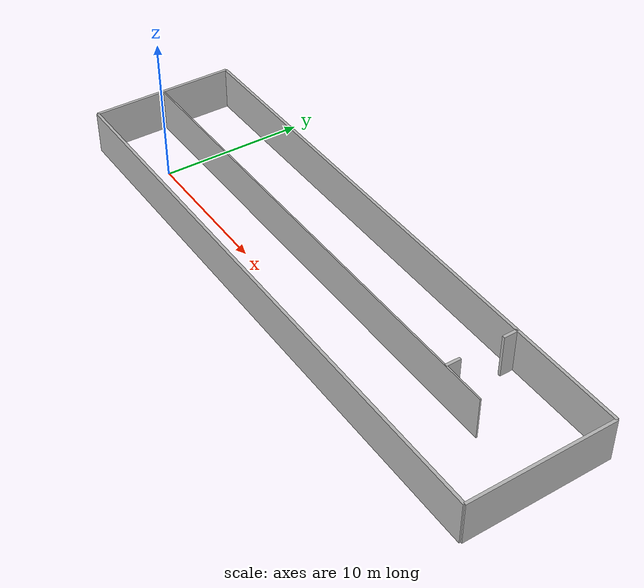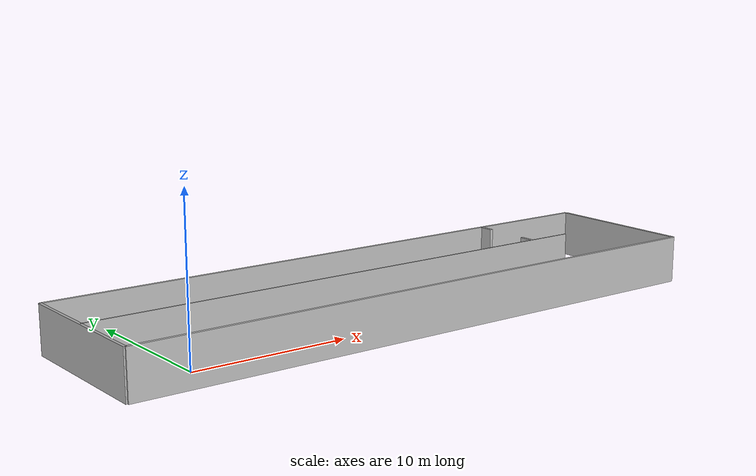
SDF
<?xml version='1.0'?>
<sdf version='1.4'>
  <model name="croc_parking_range">
	<static>true</static>
	<pose>15 -2.5 0 0 0 0</pose>
    <link name='left wall'>
      <pose>0 0 1.5 0 0 0</pose>
      <collision name='collision'>
        <geometry>
          <box>
            <size>40 .2 3</size>
          </box>
        </geometry>
      </collision>
      <visual name='visual'>
		<material>
		    <script>
        	    <uri>file://media/materials/scripts/croc.material</uri>
        	    <name>Croc/Wall</name>
        	</script>
		</material>
		<geometry>
          <box>
            <size>40 .2 3</size>
          </box>
        </geometry>
      </visual>
	</link>
 	<link name='right wall'>
      <pose>0 10 1.5 0 0 0</pose>
      <collision name='collision'>
        <geometry>
          <box>
            <size>40 .2 3</size>
          </box>
        </geometry>
      </collision>
      <visual name='visual'>
		<material>
			<script>
            	<uri>file://media/materials/scripts/croc.material</uri>
            	<name>Croc/Wall</name>
          	</script>
		</material>
        <geometry>
          <box>
            <size>40 .2 3</size>
          </box>
        </geometry>
      </visual>
	</link>
	<link name='middle wall'>
      <pose>-2.5 5 1.5 0 0 0</pose>
      <collision name='collision'>
        <geometry>
          <box>
            <size>35 0.1 3</size>
          </box>
        </geometry>
      </collision>
      <visual name='visual'>
		<material>
			<script>
		        <uri>file://media/materials/scripts/croc.material</uri>
		        <name>Croc/Wall</name>
		    </script>
		</material>
        <geometry>
          <box>
            <size>35 0.1 3</size>
          </box>
        </geometry>
      </visual>
	</link>

	<link name='rear wall'>
      <pose>20 5 1.5 0 0 0</pose>
      <collision name='collision'>
        <geometry>
          <box>
            <size>.2 10 3</size>
          </box>
        </geometry>
      </collision>
      <visual name='visual'>
		<material>
			<script>
		       <uri>file://media/materials/scripts/croc.material</uri>
		       <name>Croc/Wall</name>
		    </script>
		</material>
        <geometry>
          <box>
            <size>.2 10 3</size>
          </box>
        </geometry>
      </visual>
	</link>

	<link name='front wall'>
      <pose>-20 5 1.5 0 0 0</pose>
      <collision name='collision'>
        <geometry>
          <box>
            <size>.2 10 3</size>
          </box>
        </geometry>
      </collision>
      <visual name='visual'>
		<material>
			<script>
       		    <uri>file://media/materials/scripts/croc.material</uri>
        	    <name>Croc/Wall</name>
        	</script>
		</material>
        <geometry>
          <box>
            <size>.2 10 3</size>
          </box>
        </geometry>
      </visual>
	</link>

	<link name='obstacle wall one'>
      <pose>12 5.5 1.5 0 0 0</pose>
      <collision name='collision'>
        <geometry>
          <box>
            <size>.2 1 3</size>
          </box>
        </geometry>
      </collision>
      <visual name='visual'>
		 <material>
			 <script>
		       <uri>file://media/materials/scripts/croc.material</uri>
		       <name>Croc/Wall</name>
		     </script>
		</material>
        <geometry>
          <box>
            <size>.2 1 3</size>
          </box>
        </geometry>
      </visual>
	</link>

	<link name='obstacle wall two'>
      <pose>12 9.5 1.5 0 0 0</pose>
      <collision name='collision'>
        <geometry>
          <box>
            <size>.2 1 3</size>
          </box>
        </geometry>
      </collision>
      <visual name='visual'>
		<material>
			<script>
        	   <uri>file://media/materials/scripts/croc.material</uri>
        	   <name>Croc/Wall</name>
        	</script>
		</material>
        <geometry>
          <box>
            <size>.2 1 3</size>
          </box>
        </geometry>
      </visual>
	</link>
  </model>
</sdf>
